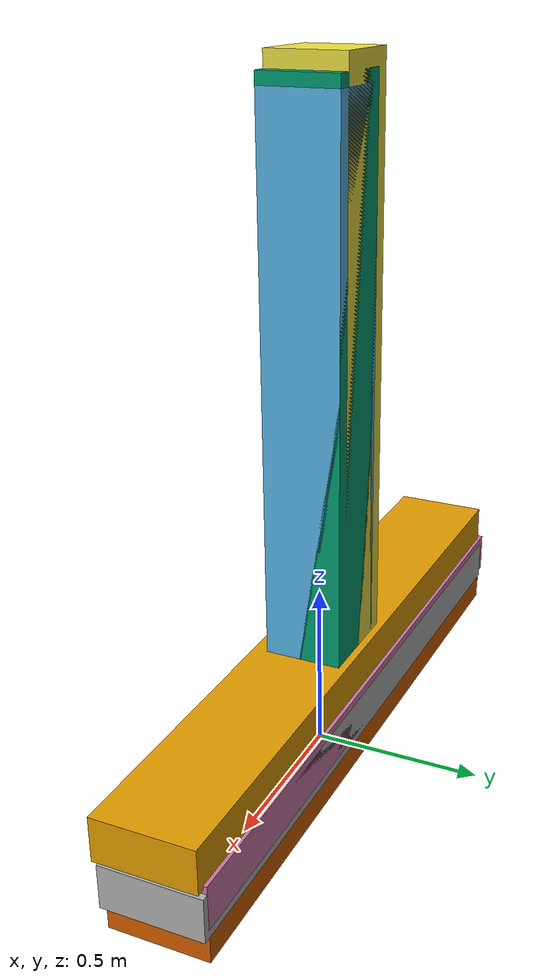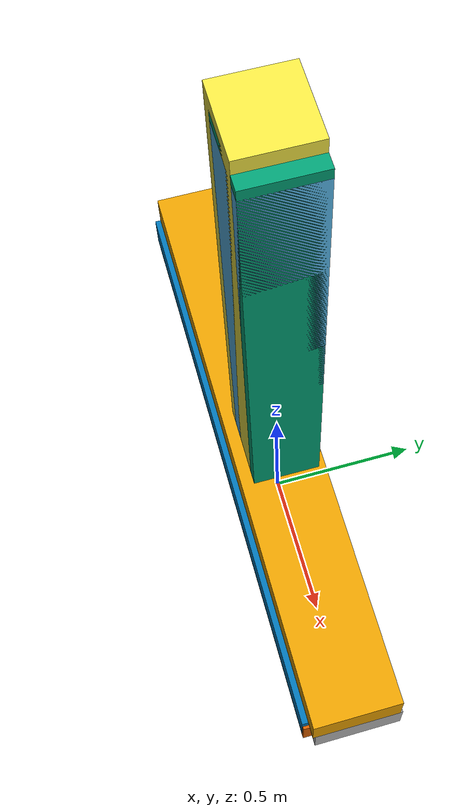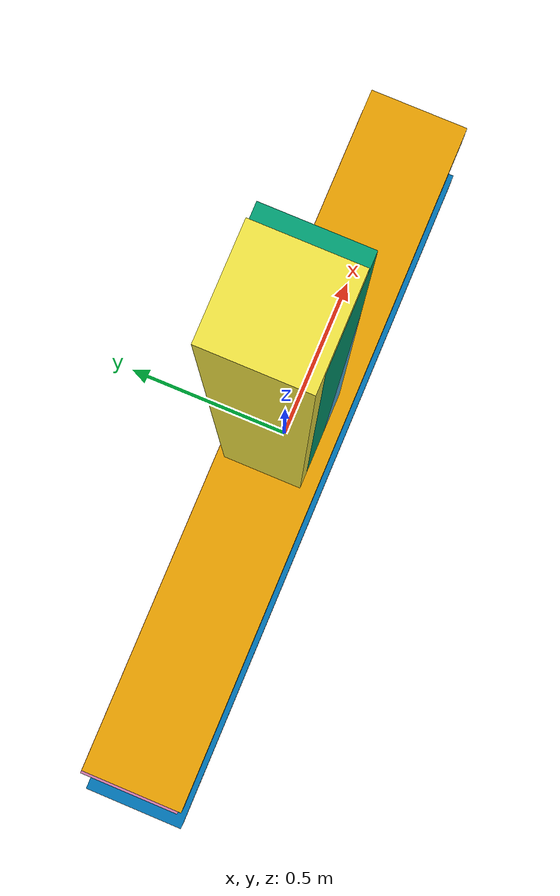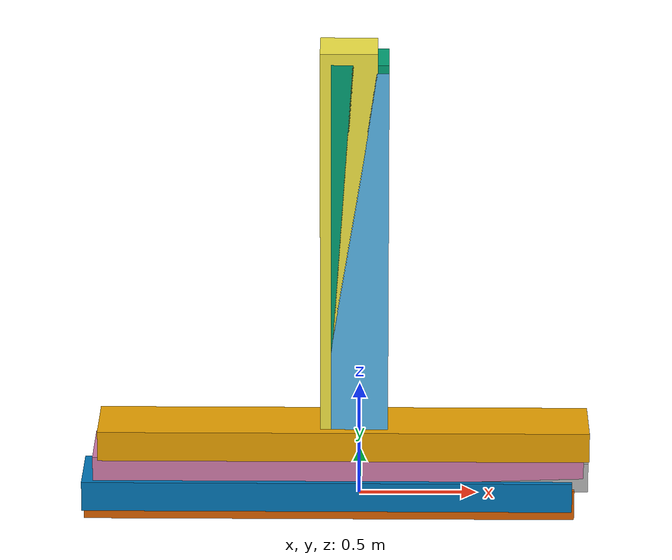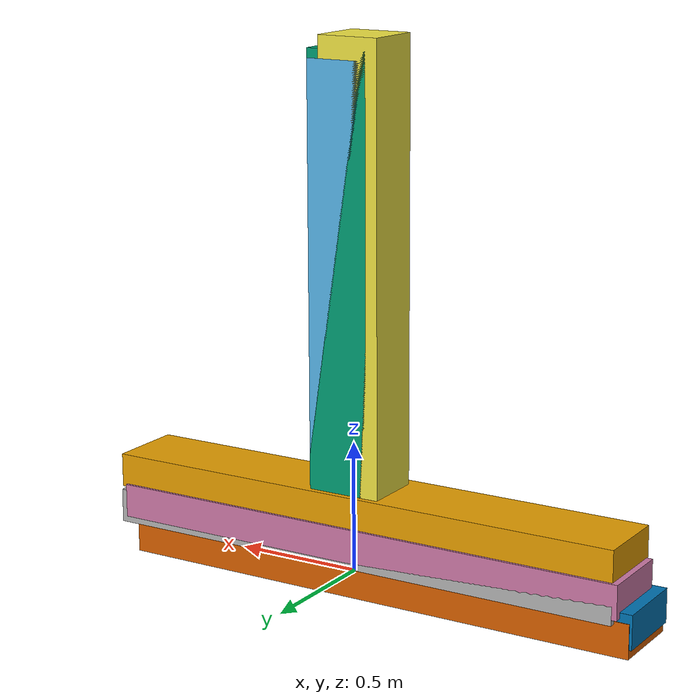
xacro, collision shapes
<?xml version='1.0'?>

<robot name="aibot" xmlns:xacro="http://ros.org/wiki/xacro">

  <xacro:include filename="$(find aibot_description)/urdf/arm/arm.urdf.xacro" />
  <xacro:property name="PI" value="3.1415926535897931" />

  <link name = "base_link"/>

  <!-- arm -->
  <aibot_arm parent_link="base_link">
    <origin xyz="0 0 0" rpy="0 0 0"/>
  </aibot_arm>

  <!-- gazebo controller plugin -->
  <xacro:include filename="$(find aibot_description)/controller/ros_controller.urdf.xacro" />

</robot>

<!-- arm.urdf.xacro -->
<robot xmlns:xacro="http://ros.org/wiki/xacro">
  <xacro:include filename ="$(find aibot_description)/urdf/arm/arm.transmission.xacro"/>
  <xacro:include filename ="$(find aibot_description)/urdf/arm/inertia.xacro"/>

  <xacro:macro name="aibot_arm" params="parent_link *origin">
    <link name='arm_base_link'>
      <!-- The Chassis Mesh -->
      <visual name='arm_base_visual'>
        <origin xyz="0 0 0" rpy=" 0 0 0"/>
        <geometry>
          <mesh filename = "package://aibot_description/urdf/arm/meshes/arm_base.stl" scale="0.001 0.001 0.001"/>
        </geometry>
      </visual>

      <!-- The Collision of the model -->
      <collision name='collision'>
        <origin xyz="0 0 0.96" rpy=" 0 0 0"/>
        <geometry>
          <box size="0.24 0.23 1.92"/>
        </geometry>
      </collision>

      <!-- the physics for gazebo -->
      <inertial>
        <mass value="200.0"/>
        <origin xyz="0 0 0.96" rpy=" 0 0 0"/>
        <box_inertia m="8.0" x="0.24" y="0.23" z="1.92"/>
      </inertial>
    </link>

    <joint type="fixed" name="arm_base_link_joint">
      <xacro:insert_block name="origin" />
      <child link="arm_base_link"/>
      <parent link="${parent_link}"/>

    </joint>

    <link name='arm_base_rot_link'>
      <visual name='arm_base_rot_visual'>
        <origin xyz="0 0 0" rpy=" 0 0 0"/>
        <geometry>
          <mesh filename = "package://aibot_description/urdf/arm/meshes/arm_base_rot.stl" scale="0.001 0.001 0.001"/>
        </geometry>
      </visual>

      <collision name='collision'>
        <origin xyz="0 0 0.96" rpy=" 0 0 0"/>
        <geometry>
          <box size="0.24 0.23 1.92"/>
        </geometry>
      </collision>

      <inertial>
        <mass value="8.0"/>
        <origin xyz="0 0 0.96" rpy=" 0 0 0"/>
        <box_inertia m="8.0" x="0.24" y="0.23" z="1.92"/>
      </inertial>
    </link>

    <joint type="revolute" name="arm_base_rot_link_joint">
      <origin xyz="0 0 0.0355" rpy="0 0 ${-PI}"/>
      <child link="arm_base_rot_link"/>
      <parent link="arm_base_link"/>
      <axis xyz="0 0 1" />
      <limit effort="100.0" lower="0" upper="${2 * PI - 0.01}" velocity="0.3539"/>
    </joint>

     <link name = "arm_first_link">
      <visual>
        <origin xyz = "0 0 0" rpy = "0 0 0"/>
        <geometry>
          <mesh filename = "package://aibot_description/urdf/arm/meshes/arm_first.stl" scale="0.001 0.001 0.001"/>
        </geometry>
      </visual>
      <collision name='collision'>
        <origin xyz="0 0 0.96" rpy=" 0 0 0"/>
        <geometry>
          <box size="0.24 0.23 1.92"/>
        </geometry>
      </collision>

      <inertial>
        <mass value="8.0"/>
        <origin xyz="0 0 0.96" rpy=" 0 0 0"/>
        <box_inertia m="8.0" x="0.24" y="0.23" z="1.92"/>
      </inertial>
    </link>

    <joint type="revolute" name="arm_first_link_joint">
      <origin xyz="0.04653 0 0.048" rpy="0 0 0"/>
      <child link="arm_first_link"/>
      <parent link="arm_base_rot_link"/>
      <axis xyz="0 1 0" />
      <limit effort="100000.0" lower="0" upper="1.47" velocity="0"/>
    </joint>

    <link name = "arm_second_motor_link">
      <visual>
        <origin xyz = "0 0 0" rpy = "0 0 0"/>
        <geometry>
          <mesh filename = "package://aibot_description/urdf/arm/meshes/arm_second_motor.stl" scale="0.001 0.001 0.001"/>
        </geometry>
      </visual>
      <collision name='collision'>
        <origin xyz="0.09331 0 -0.037679" rpy=" 0 0 0"/>
        <geometry>
          <box size="2.089 0.296 0.130"/>
        </geometry>
      </collision>

      <inertial>
        <mass value="6.0"/>
        <origin xyz="0.09331 0 -0.037679" rpy=" 0 0 0"/>
        <box_inertia m="6.0" x="2.089" y="0.296" z="0.130"/>
      </inertial>
    </link>

    <joint type="revolute" name="arm_second_motor_link_joint">
      <origin xyz="0 0.0245 0" rpy="0 0 0"/>
      <child link="arm_second_motor_link"/>
      <parent link="arm_first_link"/>
      <axis xyz="0 1 0" />
      <limit effort="100000.0" lower="0" upper="1.47" velocity="0.0833"/>
    </joint>

    <link name = "arm_second_connector_link">
      <visual>
        <origin xyz = "0 0 0" rpy = "0 0 0"/>
        <geometry>
          <mesh filename = "package://aibot_description/urdf/arm/meshes/arm_second_connector.stl" scale="0.001 0.001 0.001"/>
        </geometry>
      </visual>
      <collision name='collision'>
        <origin xyz="0.09331 0 -0.037679" rpy=" 0 0 0"/>
        <geometry>
          <box size="2.089 0.296 0.130"/>
        </geometry>
      </collision>

      <inertial>
        <mass value="6.0"/>
        <origin xyz="0.09331 0 -0.037679" rpy=" 0 0 0"/>
        <box_inertia m="6.0" x="2.089" y="0.296" z="0.130"/>
      </inertial>
    </link>

    <joint type="revolute" name="arm_second_connector_link_joint">
      <origin xyz="-0.01 -0.002 -0.034759" rpy="0 0 0"/>
      <child link="arm_second_connector_link"/>
      <parent link="arm_second_motor_link"/>
      <axis xyz="0 1 0" />
      <limit effort="100000.0" lower="-${PI}" upper="1.47" velocity="0.0833"/>
    </joint>

    <link name = "arm_second_link">
      <visual>
        <origin xyz = "0 0 0" rpy = "0 0 0"/>
        <geometry>
          <mesh filename = "package://aibot_description/urdf/arm/meshes/arm_second.stl" scale="0.001 0.001 0.001"/>
        </geometry>
      </visual>
      <collision name='collision'>
        <origin xyz="0.09331 0 -0.037679" rpy=" 0 0 0"/>
        <geometry>
          <box size="2.089 0.296 0.130"/>
        </geometry>
      </collision>

      <inertial>
        <mass value="6.0"/>
        <origin xyz="0.09331 0 -0.037679" rpy=" 0 0 0"/>
        <box_inertia m="6.0" x="2.089" y="0.296" z="0.130"/>
      </inertial>
    </link>

    <joint type="revolute" name="arm_second_link_joint">
      <origin xyz="-0.048 0 0.106693" rpy="0 0 0"/>
      <child link="arm_second_link"/>
      <parent link="arm_first_link"/>
      <axis xyz="0 1 0" />
      <limit effort="100000.0" lower="-${PI}" upper="1.47" velocity="0.0833"/>
    </joint>

    <link name = "arm_third_link">
      <visual>
        <origin xyz = "0 0 0" rpy = "0 0 0"/>
        <geometry>
          <mesh filename = "package://aibot_description/urdf/arm/meshes/arm_third.stl" scale="0.001 0.001 0.001"/>
        </geometry>
      </visual>
      <collision name='collision'>
        <origin xyz="0.09331 0 -0.037679" rpy=" 0 0 0"/>
        <geometry>
          <box size="2.089 0.296 0.130"/>
        </geometry>
      </collision>

      <inertial>
        <mass value="6.0"/>
        <origin xyz="0.09331 0 -0.037679" rpy=" 0 0 0"/>
        <box_inertia m="6.0" x="2.089" y="0.296" z="0.130"/>
      </inertial>
    </link>

    <joint type="revolute" name="arm_third_link_joint">
      <origin xyz="-0.01995 0 -0.022386" rpy="0 0 0"/>
      <child link="arm_third_link"/>
      <parent link="arm_second_link"/>
      <axis xyz="0 0 1" />
      <limit effort="100000.0" lower="-${PI}" upper="1.47" velocity="0.0833"/>
    </joint>

    <link name = "arm_fourth_link">
      <visual>
        <origin xyz = "0 0 0" rpy = "0 0 0"/>
        <geometry>
          <mesh filename = "package://aibot_description/urdf/arm/meshes/arm_fourth.stl" scale="0.001 0.001 0.001"/>
        </geometry>
      </visual>
      <collision name='collision'>
        <origin xyz="0.09331 0 -0.037679" rpy=" 0 0 0"/>
        <geometry>
          <box size="2.089 0.296 0.130"/>
        </geometry>
      </collision>

      <inertial>
        <mass value="6.0"/>
        <origin xyz="0.09331 0 -0.037679" rpy=" 0 0 0"/>
        <box_inertia m="6.0" x="2.089" y="0.296" z="0.130"/>
      </inertial>
    </link>

    <joint type="revolute" name="arm_fourth_link_joint">
      <origin xyz="-0.00295 0.01034 0.14053" rpy="0 0 0"/>
      <child link="arm_fourth_link"/>
      <parent link="arm_third_link"/>
      <axis xyz="0 1 0" />
      <limit effort="100000.0" lower="-${PI}" upper="1.47" velocity="0.0833"/>
    </joint>

  </xacro:macro>
</robot>
